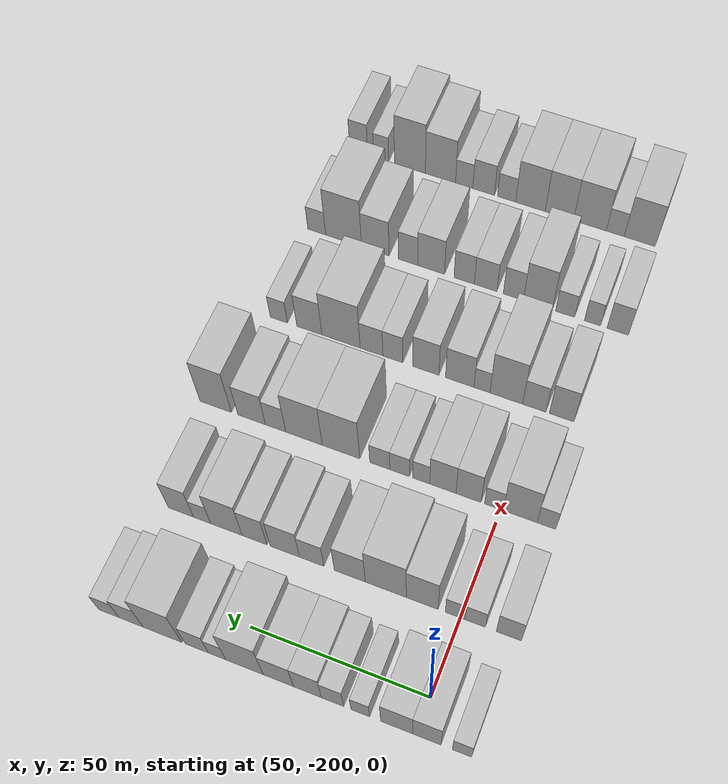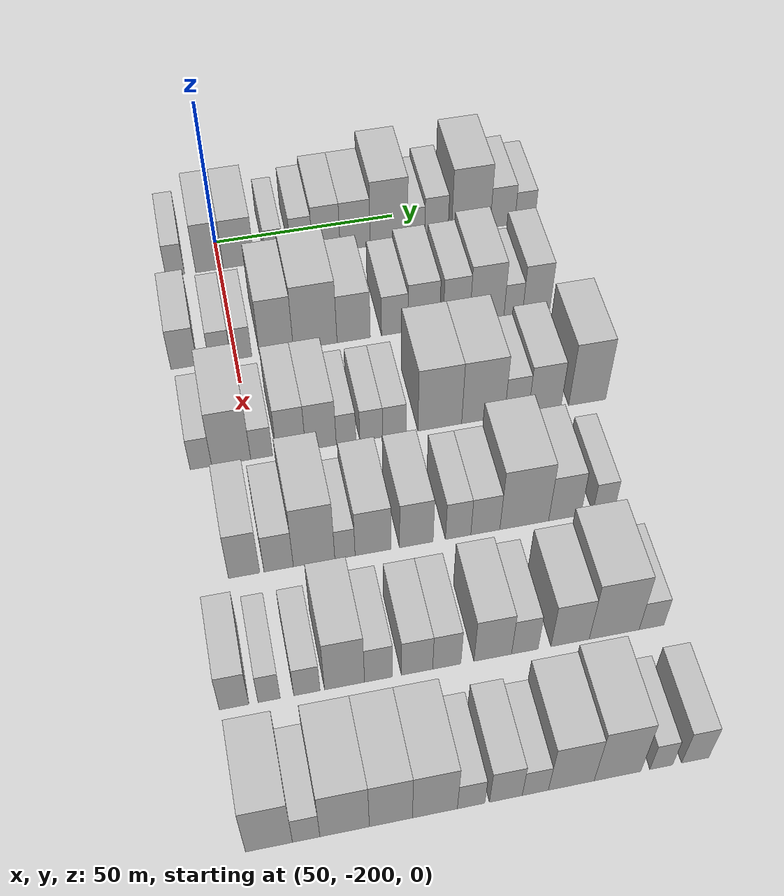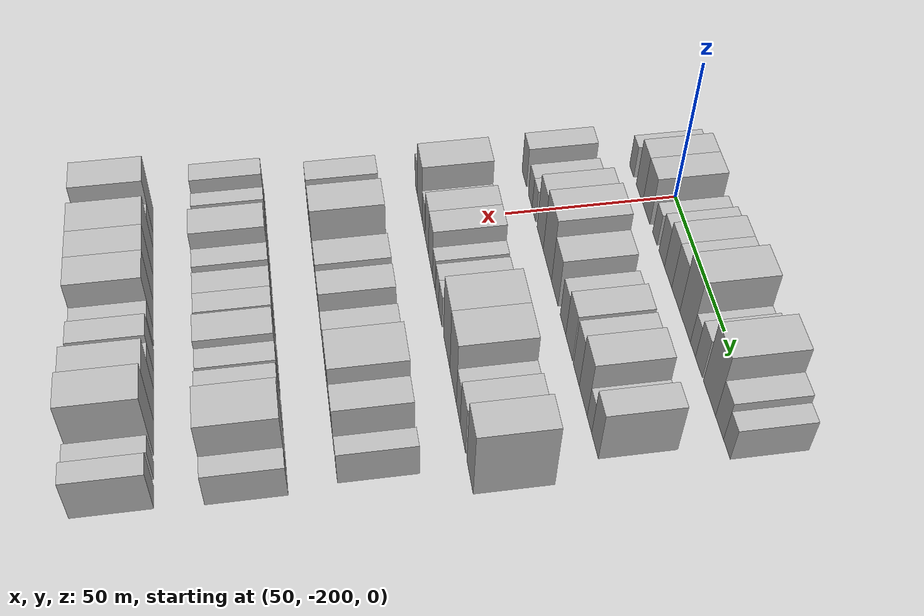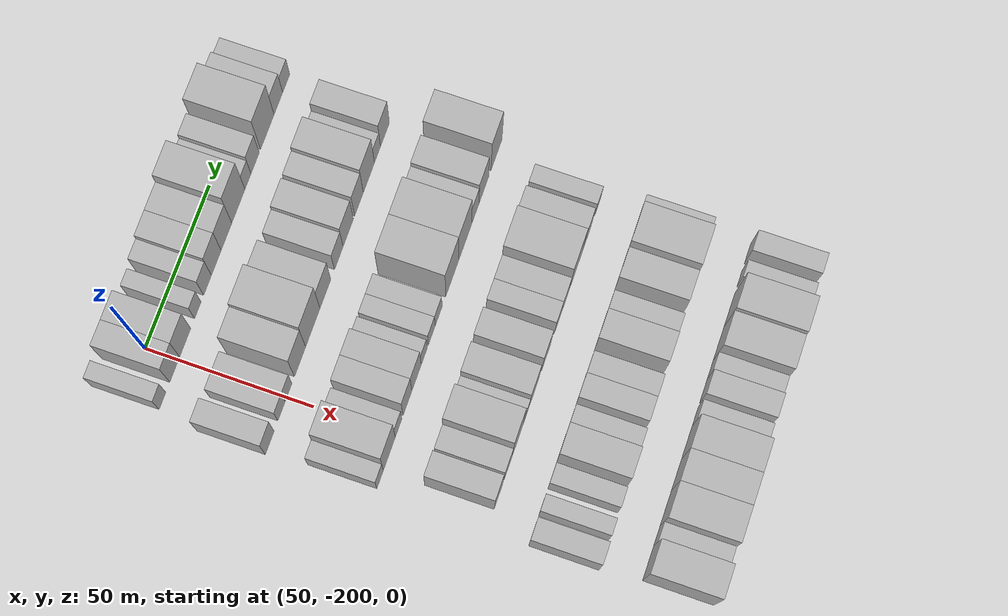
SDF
<sdf version="1.6">
 <world name="default">
  <model name="building_33">
   <static>1</static>
   <pose>50.0000 -212.1156 0 0.000000 0.000000 0.000000</pose>
   <link name="link">
    <pose>0 0 6.00 0 0 0</pose>
    <collision name="collision"><geometry><box><size>20.0000 5.0956 12.0000</size></box></geometry></collision>
    <visual name="visual">
     <cast_shadows>0</cast_shadows>
     <geometry><box><size>20.0000 5.0956 12.0000</size></box></geometry>
     <material>
      <script>
       <uri>model://HANNAS_wall/materials/scripts</uri>
       <uri>model://HANNAS_wall/materials/textures</uri>
       <name>vrc/HANNAS_wall</name>
      </script>
     </material>
    </visual>
   </link>
  </model>
  <model name="building_34">
   <static>1</static>
   <pose>50.0000 -202.7801 0 0.000000 0.000000 0.000000</pose>
   <link name="link">
    <pose>0 0 9.00 0 0 0</pose>
    <collision name="collision"><geometry><box><size>20.0000 7.5754 18.0000</size></box></geometry></collision>
    <visual name="visual">
     <cast_shadows>0</cast_shadows>
     <geometry><box><size>20.0000 7.5754 18.0000</size></box></geometry>
     <material>
      <script>
       <uri>model://HANNAS_wall/materials/scripts</uri>
       <uri>model://HANNAS_wall/materials/textures</uri>
       <name>vrc/HANNAS_wall</name>
      </script>
     </material>
    </visual>
   </link>
  </model>
  <model name="building_35">
   <static>1</static>
   <pose>50.0000 -194.7225 0 0.000000 0.000000 0.000000</pose>
   <link name="link">
    <pose>0 0 9.00 0 0 0</pose>
    <collision name="collision"><geometry><box><size>20.0000 8.5398 18.0000</size></box></geometry></collision>
    <visual name="visual">
     <cast_shadows>0</cast_shadows>
     <geometry><box><size>20.0000 8.5398 18.0000</size></box></geometry>
     <material>
      <script>
       <uri>model://HANNAS_wall/materials/scripts</uri>
       <uri>model://HANNAS_wall/materials/textures</uri>
       <name>vrc/HANNAS_wall</name>
      </script>
     </material>
    </visual>
   </link>
  </model>
  <model name="building_36">
   <static>1</static>
   <pose>50.0000 -184.9223 0 0.000000 0.000000 0.000000</pose>
   <link name="link">
    <pose>0 0 6.00 0 0 0</pose>
    <collision name="collision"><geometry><box><size>20.0000 5.0607 12.0000</size></box></geometry></collision>
    <visual name="visual">
     <cast_shadows>0</cast_shadows>
     <geometry><box><size>20.0000 5.0607 12.0000</size></box></geometry>
     <material>
      <script>
       <uri>model://HANNAS_wall/materials/scripts</uri>
       <uri>model://HANNAS_wall/materials/textures</uri>
       <name>vrc/HANNAS_wall</name>
      </script>
     </material>
    </visual>
   </link>
  </model>
  <model name="building_37">
   <static>1</static>
   <pose>50.0000 -177.3628 0 0.000000 0.000000 0.000000</pose>
   <link name="link">
    <pose>0 0 7.50 0 0 0</pose>
    <collision name="collision"><geometry><box><size>20.0000 6.0583 15.0000</size></box></geometry></collision>
    <visual name="visual">
     <cast_shadows>0</cast_shadows>
     <geometry><box><size>20.0000 6.0583 15.0000</size></box></geometry>
     <material>
      <script>
       <uri>model://HANNAS_wall/materials/scripts</uri>
       <uri>model://HANNAS_wall/materials/textures</uri>
       <name>vrc/HANNAS_wall</name>
      </script>
     </material>
    </visual>
   </link>
  </model>
  <model name="building_38">
   <static>1</static>
   <pose>50.0000 -170.4805 0 0.000000 0.000000 0.000000</pose>
   <link name="link">
    <pose>0 0 9.00 0 0 0</pose>
    <collision name="collision"><geometry><box><size>20.0000 7.7063 18.0000</size></box></geometry></collision>
    <visual name="visual">
     <cast_shadows>0</cast_shadows>
     <geometry><box><size>20.0000 7.7063 18.0000</size></box></geometry>
     <material>
      <script>
       <uri>model://HANNAS_wall/materials/scripts</uri>
       <uri>model://HANNAS_wall/materials/textures</uri>
       <name>vrc/HANNAS_wall</name>
      </script>
     </material>
    </visual>
   </link>
  </model>
  <model name="building_39">
   <static>1</static>
   <pose>50.0000 -162.4200 0 0.000000 0.000000 0.000000</pose>
   <link name="link">
    <pose>0 0 9.00 0 0 0</pose>
    <collision name="collision"><geometry><box><size>20.0000 8.4147 18.0000</size></box></geometry></collision>
    <visual name="visual">
     <cast_shadows>0</cast_shadows>
     <geometry><box><size>20.0000 8.4147 18.0000</size></box></geometry>
     <material>
      <script>
       <uri>model://HANNAS_wall/materials/scripts</uri>
       <uri>model://HANNAS_wall/materials/textures</uri>
       <name>vrc/HANNAS_wall</name>
      </script>
     </material>
    </visual>
   </link>
  </model>
  <model name="building_40">
   <static>1</static>
   <pose>50.0000 -152.9572 0 0.000000 0.000000 0.000000</pose>
   <link name="link">
    <pose>0 0 12.00 0 0 0</pose>
    <collision name="collision"><geometry><box><size>20.0000 10.5107 24.0000</size></box></geometry></collision>
    <visual name="visual">
     <cast_shadows>0</cast_shadows>
     <geometry><box><size>20.0000 10.5107 24.0000</size></box></geometry>
     <material>
      <script>
       <uri>model://HANNAS_wall/materials/scripts</uri>
       <uri>model://HANNAS_wall/materials/textures</uri>
       <name>vrc/HANNAS_wall</name>
      </script>
     </material>
    </visual>
   </link>
  </model>
  <model name="building_41">
   <static>1</static>
   <pose>50.0000 -145.2653 0 0.000000 0.000000 0.000000</pose>
   <link name="link">
    <pose>0 0 6.00 0 0 0</pose>
    <collision name="collision"><geometry><box><size>20.0000 4.8732 12.0000</size></box></geometry></collision>
    <visual name="visual">
     <cast_shadows>0</cast_shadows>
     <geometry><box><size>20.0000 4.8732 12.0000</size></box></geometry>
     <material>
      <script>
       <uri>model://HANNAS_wall/materials/scripts</uri>
       <uri>model://HANNAS_wall/materials/textures</uri>
       <name>vrc/HANNAS_wall</name>
      </script>
     </material>
    </visual>
   </link>
  </model>
  <model name="building_42">
   <static>1</static>
   <pose>50.0000 -139.5186 0 0.000000 0.000000 0.000000</pose>
   <link name="link">
    <pose>0 0 7.50 0 0 0</pose>
    <collision name="collision"><geometry><box><size>20.0000 6.6202 15.0000</size></box></geometry></collision>
    <visual name="visual">
     <cast_shadows>0</cast_shadows>
     <geometry><box><size>20.0000 6.6202 15.0000</size></box></geometry>
     <material>
      <script>
       <uri>model://HANNAS_wall/materials/scripts</uri>
       <uri>model://HANNAS_wall/materials/textures</uri>
       <name>vrc/HANNAS_wall</name>
      </script>
     </material>
    </visual>
   </link>
  </model>
  <model name="building_43">
   <static>1</static>
   <pose>50.0000 -129.6769 0 0.000000 0.000000 0.000000</pose>
   <link name="link">
    <pose>0 0 12.00 0 0 0</pose>
    <collision name="collision"><geometry><box><size>20.0000 11.0632 24.0000</size></box></geometry></collision>
    <visual name="visual">
     <cast_shadows>0</cast_shadows>
     <geometry><box><size>20.0000 11.0632 24.0000</size></box></geometry>
     <material>
      <script>
       <uri>model://HANNAS_wall/materials/scripts</uri>
       <uri>model://HANNAS_wall/materials/textures</uri>
       <name>vrc/HANNAS_wall</name>
      </script>
     </material>
    </visual>
   </link>
  </model>
  <model name="building_44">
   <static>1</static>
   <pose>50.0000 -120.6109 0 0.000000 0.000000 0.000000</pose>
   <link name="link">
    <pose>0 0 7.50 0 0 0</pose>
    <collision name="collision"><geometry><box><size>20.0000 7.0687 15.0000</size></box></geometry></collision>
    <visual name="visual">
     <cast_shadows>0</cast_shadows>
     <geometry><box><size>20.0000 7.0687 15.0000</size></box></geometry>
     <material>
      <script>
       <uri>model://HANNAS_wall/materials/scripts</uri>
       <uri>model://HANNAS_wall/materials/textures</uri>
       <name>vrc/HANNAS_wall</name>
      </script>
     </material>
    </visual>
   </link>
  </model>
  <model name="building_45">
   <static>1</static>
   <pose>50.0000 -114.1726 0 0.000000 0.000000 0.000000</pose>
   <link name="link">
    <pose>0 0 6.00 0 0 0</pose>
    <collision name="collision"><geometry><box><size>20.0000 5.8080 12.0000</size></box></geometry></collision>
    <visual name="visual">
     <cast_shadows>0</cast_shadows>
     <geometry><box><size>20.0000 5.8080 12.0000</size></box></geometry>
     <material>
      <script>
       <uri>model://HANNAS_wall/materials/scripts</uri>
       <uri>model://HANNAS_wall/materials/textures</uri>
       <name>vrc/HANNAS_wall</name>
      </script>
     </material>
    </visual>
   </link>
  </model>
  <model name="building_159">
   <static>1</static>
   <pose>82.0000 -213.3561 0 0.000000 0.000000 0.000000</pose>
   <link name="link">
    <pose>0 0 7.50 0 0 0</pose>
    <collision name="collision"><geometry><box><size>20.0000 6.8911 15.0000</size></box></geometry></collision>
    <visual name="visual">
     <cast_shadows>0</cast_shadows>
     <geometry><box><size>20.0000 6.8911 15.0000</size></box></geometry>
     <material>
      <script>
       <uri>model://HANNAS_wall/materials/scripts</uri>
       <uri>model://HANNAS_wall/materials/textures</uri>
       <name>vrc/HANNAS_wall</name>
      </script>
     </material>
    </visual>
   </link>
  </model>
  <model name="building_160">
   <static>1</static>
   <pose>82.0000 -204.0961 0 0.000000 0.000000 0.000000</pose>
   <link name="link">
    <pose>0 0 6.00 0 0 0</pose>
    <collision name="collision"><geometry><box><size>20.0000 5.6289 12.0000</size></box></geometry></collision>
    <visual name="visual">
     <cast_shadows>0</cast_shadows>
     <geometry><box><size>20.0000 5.6289 12.0000</size></box></geometry>
     <material>
      <script>
       <uri>model://HANNAS_wall/materials/scripts</uri>
       <uri>model://HANNAS_wall/materials/textures</uri>
       <name>vrc/HANNAS_wall</name>
      </script>
     </material>
    </visual>
   </link>
  </model>
  <model name="building_161">
   <static>1</static>
   <pose>82.0000 -198.5373 0 0.000000 0.000000 0.000000</pose>
   <link name="link">
    <pose>0 0 6.00 0 0 0</pose>
    <collision name="collision"><geometry><box><size>20.0000 5.4887 12.0000</size></box></geometry></collision>
    <visual name="visual">
     <cast_shadows>0</cast_shadows>
     <geometry><box><size>20.0000 5.4887 12.0000</size></box></geometry>
     <material>
      <script>
       <uri>model://HANNAS_wall/materials/scripts</uri>
       <uri>model://HANNAS_wall/materials/textures</uri>
       <name>vrc/HANNAS_wall</name>
      </script>
     </material>
    </visual>
   </link>
  </model>
  <model name="building_162">
   <static>1</static>
   <pose>82.0000 -189.3347 0 0.000000 0.000000 0.000000</pose>
   <link name="link">
    <pose>0 0 10.50 0 0 0</pose>
    <collision name="collision"><geometry><box><size>20.0000 8.9163 21.0000</size></box></geometry></collision>
    <visual name="visual">
     <cast_shadows>0</cast_shadows>
     <geometry><box><size>20.0000 8.9163 21.0000</size></box></geometry>
     <material>
      <script>
       <uri>model://HANNAS_wall/materials/scripts</uri>
       <uri>model://HANNAS_wall/materials/textures</uri>
       <name>vrc/HANNAS_wall</name>
      </script>
     </material>
    </visual>
   </link>
  </model>
  <model name="building_163">
   <static>1</static>
   <pose>82.0000 -179.0976 0 0.000000 0.000000 0.000000</pose>
   <link name="link">
    <pose>0 0 12.00 0 0 0</pose>
    <collision name="collision"><geometry><box><size>20.0000 11.5581 24.0000</size></box></geometry></collision>
    <visual name="visual">
     <cast_shadows>0</cast_shadows>
     <geometry><box><size>20.0000 11.5581 24.0000</size></box></geometry>
     <material>
      <script>
       <uri>model://HANNAS_wall/materials/scripts</uri>
       <uri>model://HANNAS_wall/materials/textures</uri>
       <name>vrc/HANNAS_wall</name>
      </script>
     </material>
    </visual>
   </link>
  </model>
  <model name="building_164">
   <static>1</static>
   <pose>82.0000 -168.8979 0 0.000000 0.000000 0.000000</pose>
   <link name="link">
    <pose>0 0 9.00 0 0 0</pose>
    <collision name="collision"><geometry><box><size>20.0000 8.8413 18.0000</size></box></geometry></collision>
    <visual name="visual">
     <cast_shadows>0</cast_shadows>
     <geometry><box><size>20.0000 8.8413 18.0000</size></box></geometry>
     <material>
      <script>
       <uri>model://HANNAS_wall/materials/scripts</uri>
       <uri>model://HANNAS_wall/materials/textures</uri>
       <name>vrc/HANNAS_wall</name>
      </script>
     </material>
    </visual>
   </link>
  </model>
  <model name="building_165">
   <static>1</static>
   <pose>82.0000 -157.9597 0 0.000000 0.000000 0.000000</pose>
   <link name="link">
    <pose>0 0 7.50 0 0 0</pose>
    <collision name="collision"><geometry><box><size>20.0000 7.0351 15.0000</size></box></geometry></collision>
    <visual name="visual">
     <cast_shadows>0</cast_shadows>
     <geometry><box><size>20.0000 7.0351 15.0000</size></box></geometry>
     <material>
      <script>
       <uri>model://HANNAS_wall/materials/scripts</uri>
       <uri>model://HANNAS_wall/materials/textures</uri>
       <name>vrc/HANNAS_wall</name>
      </script>
     </material>
    </visual>
   </link>
  </model>
  <model name="building_166">
   <static>1</static>
   <pose>82.0000 -150.1889 0 0.000000 0.000000 0.000000</pose>
   <link name="link">
    <pose>0 0 9.00 0 0 0</pose>
    <collision name="collision"><geometry><box><size>20.0000 8.5064 18.0000</size></box></geometry></collision>
    <visual name="visual">
     <cast_shadows>0</cast_shadows>
     <geometry><box><size>20.0000 8.5064 18.0000</size></box></geometry>
     <material>
      <script>
       <uri>model://HANNAS_wall/materials/scripts</uri>
       <uri>model://HANNAS_wall/materials/textures</uri>
       <name>vrc/HANNAS_wall</name>
      </script>
     </material>
    </visual>
   </link>
  </model>
  <model name="building_167">
   <static>1</static>
   <pose>82.0000 -141.3164 0 0.000000 0.000000 0.000000</pose>
   <link name="link">
    <pose>0 0 9.00 0 0 0</pose>
    <collision name="collision"><geometry><box><size>20.0000 7.2386 18.0000</size></box></geometry></collision>
    <visual name="visual">
     <cast_shadows>0</cast_shadows>
     <geometry><box><size>20.0000 7.2386 18.0000</size></box></geometry>
     <material>
      <script>
       <uri>model://HANNAS_wall/materials/scripts</uri>
       <uri>model://HANNAS_wall/materials/textures</uri>
       <name>vrc/HANNAS_wall</name>
      </script>
     </material>
    </visual>
   </link>
  </model>
  <model name="building_168">
   <static>1</static>
   <pose>82.0000 -133.0347 0 0.000000 0.000000 0.000000</pose>
   <link name="link">
    <pose>0 0 10.50 0 0 0</pose>
    <collision name="collision"><geometry><box><size>20.0000 9.3247 21.0000</size></box></geometry></collision>
    <visual name="visual">
     <cast_shadows>0</cast_shadows>
     <geometry><box><size>20.0000 9.3247 21.0000</size></box></geometry>
     <material>
      <script>
       <uri>model://HANNAS_wall/materials/scripts</uri>
       <uri>model://HANNAS_wall/materials/textures</uri>
       <name>vrc/HANNAS_wall</name>
      </script>
     </material>
    </visual>
   </link>
  </model>
  <model name="building_169">
   <static>1</static>
   <pose>82.0000 -125.8127 0 0.000000 0.000000 0.000000</pose>
   <link name="link">
    <pose>0 0 6.00 0 0 0</pose>
    <collision name="collision"><geometry><box><size>20.0000 5.1193 12.0000</size></box></geometry></collision>
    <visual name="visual">
     <cast_shadows>0</cast_shadows>
     <geometry><box><size>20.0000 5.1193 12.0000</size></box></geometry>
     <material>
      <script>
       <uri>model://HANNAS_wall/materials/scripts</uri>
       <uri>model://HANNAS_wall/materials/textures</uri>
       <name>vrc/HANNAS_wall</name>
      </script>
     </material>
    </visual>
   </link>
  </model>
  <model name="building_170">
   <static>1</static>
   <pose>82.0000 -119.4903 0 0.000000 0.000000 0.000000</pose>
   <link name="link">
    <pose>0 0 9.00 0 0 0</pose>
    <collision name="collision"><geometry><box><size>20.0000 7.5255 18.0000</size></box></geometry></collision>
    <visual name="visual">
     <cast_shadows>0</cast_shadows>
     <geometry><box><size>20.0000 7.5255 18.0000</size></box></geometry>
     <material>
      <script>
       <uri>model://HANNAS_wall/materials/scripts</uri>
       <uri>model://HANNAS_wall/materials/textures</uri>
       <name>vrc/HANNAS_wall</name>
      </script>
     </material>
    </visual>
   </link>
  </model>
  <model name="building_284">
   <static>1</static>
   <pose>114.0000 -212.9669 0 0.000000 0.000000 0.000000</pose>
   <link name="link">
    <pose>0 0 6.00 0 0 0</pose>
    <collision name="collision"><geometry><box><size>20.0000 5.2840 12.0000</size></box></geometry></collision>
    <visual name="visual">
     <cast_shadows>0</cast_shadows>
     <geometry><box><size>20.0000 5.2840 12.0000</size></box></geometry>
     <material>
      <script>
       <uri>model://HANNAS_wall/materials/scripts</uri>
       <uri>model://HANNAS_wall/materials/textures</uri>
       <name>vrc/HANNAS_wall</name>
      </script>
     </material>
    </visual>
   </link>
  </model>
  <model name="building_285">
   <static>1</static>
   <pose>114.0000 -205.5097 0 0.000000 0.000000 0.000000</pose>
   <link name="link">
    <pose>0 0 10.50 0 0 0</pose>
    <collision name="collision"><geometry><box><size>20.0000 9.6304 21.0000</size></box></geometry></collision>
    <visual name="visual">
     <cast_shadows>0</cast_shadows>
     <geometry><box><size>20.0000 9.6304 21.0000</size></box></geometry>
     <material>
      <script>
       <uri>model://HANNAS_wall/materials/scripts</uri>
       <uri>model://HANNAS_wall/materials/textures</uri>
       <name>vrc/HANNAS_wall</name>
      </script>
     </material>
    </visual>
   </link>
  </model>
  <model name="building_286">
   <static>1</static>
   <pose>114.0000 -197.9798 0 0.000000 0.000000 0.000000</pose>
   <link name="link">
    <pose>0 0 6.00 0 0 0</pose>
    <collision name="collision"><geometry><box><size>20.0000 5.4293 12.0000</size></box></geometry></collision>
    <visual name="visual">
     <cast_shadows>0</cast_shadows>
     <geometry><box><size>20.0000 5.4293 12.0000</size></box></geometry>
     <material>
      <script>
       <uri>model://HANNAS_wall/materials/scripts</uri>
       <uri>model://HANNAS_wall/materials/textures</uri>
       <name>vrc/HANNAS_wall</name>
      </script>
     </material>
    </visual>
   </link>
  </model>
  <model name="building_287">
   <static>1</static>
   <pose>114.0000 -190.6415 0 0.000000 0.000000 0.000000</pose>
   <link name="link">
    <pose>0 0 9.00 0 0 0</pose>
    <collision name="collision"><geometry><box><size>20.0000 7.2474 18.0000</size></box></geometry></collision>
    <visual name="visual">
     <cast_shadows>0</cast_shadows>
     <geometry><box><size>20.0000 7.2474 18.0000</size></box></geometry>
     <material>
      <script>
       <uri>model://HANNAS_wall/materials/scripts</uri>
       <uri>model://HANNAS_wall/materials/textures</uri>
       <name>vrc/HANNAS_wall</name>
      </script>
     </material>
    </visual>
   </link>
  </model>
  <model name="building_288">
   <static>1</static>
   <pose>114.0000 -183.1752 0 0.000000 0.000000 0.000000</pose>
   <link name="link">
    <pose>0 0 9.00 0 0 0</pose>
    <collision name="collision"><geometry><box><size>20.0000 7.6853 18.0000</size></box></geometry></collision>
    <visual name="visual">
     <cast_shadows>0</cast_shadows>
     <geometry><box><size>20.0000 7.6853 18.0000</size></box></geometry>
     <material>
      <script>
       <uri>model://HANNAS_wall/materials/scripts</uri>
       <uri>model://HANNAS_wall/materials/textures</uri>
       <name>vrc/HANNAS_wall</name>
      </script>
     </material>
    </visual>
   </link>
  </model>
  <model name="building_289">
   <static>1</static>
   <pose>114.0000 -176.8612 0 0.000000 0.000000 0.000000</pose>
   <link name="link">
    <pose>0 0 6.00 0 0 0</pose>
    <collision name="collision"><geometry><box><size>20.0000 4.9427 12.0000</size></box></geometry></collision>
    <visual name="visual">
     <cast_shadows>0</cast_shadows>
     <geometry><box><size>20.0000 4.9427 12.0000</size></box></geometry>
     <material>
      <script>
       <uri>model://HANNAS_wall/materials/scripts</uri>
       <uri>model://HANNAS_wall/materials/textures</uri>
       <name>vrc/HANNAS_wall</name>
      </script>
     </material>
    </visual>
   </link>
  </model>
  <model name="building_290">
   <static>1</static>
   <pose>114.0000 -170.5209 0 0.000000 0.000000 0.000000</pose>
   <link name="link">
    <pose>0 0 6.00 0 0 0</pose>
    <collision name="collision"><geometry><box><size>20.0000 5.7380 12.0000</size></box></geometry></collision>
    <visual name="visual">
     <cast_shadows>0</cast_shadows>
     <geometry><box><size>20.0000 5.7380 12.0000</size></box></geometry>
     <material>
      <script>
       <uri>model://HANNAS_wall/materials/scripts</uri>
       <uri>model://HANNAS_wall/materials/textures</uri>
       <name>vrc/HANNAS_wall</name>
      </script>
     </material>
    </visual>
   </link>
  </model>
  <model name="building_291">
   <static>1</static>
   <pose>114.0000 -164.6711 0 0.000000 0.000000 0.000000</pose>
   <link name="link">
    <pose>0 0 6.00 0 0 0</pose>
    <collision name="collision"><geometry><box><size>20.0000 5.9616 12.0000</size></box></geometry></collision>
    <visual name="visual">
     <cast_shadows>0</cast_shadows>
     <geometry><box><size>20.0000 5.9616 12.0000</size></box></geometry>
     <material>
      <script>
       <uri>model://HANNAS_wall/materials/scripts</uri>
       <uri>model://HANNAS_wall/materials/textures</uri>
       <name>vrc/HANNAS_wall</name>
      </script>
     </material>
    </visual>
   </link>
  </model>
  <model name="building_292">
   <static>1</static>
   <pose>114.0000 -153.0856 0 0.000000 0.000000 0.000000</pose>
   <link name="link">
    <pose>0 0 12.00 0 0 0</pose>
    <collision name="collision"><geometry><box><size>20.0000 11.2094 24.0000</size></box></geometry></collision>
    <visual name="visual">
     <cast_shadows>0</cast_shadows>
     <geometry><box><size>20.0000 11.2094 24.0000</size></box></geometry>
     <material>
      <script>
       <uri>model://HANNAS_wall/materials/scripts</uri>
       <uri>model://HANNAS_wall/materials/textures</uri>
       <name>vrc/HANNAS_wall</name>
      </script>
     </material>
    </visual>
   </link>
  </model>
  <model name="building_293">
   <static>1</static>
   <pose>114.0000 -141.9498 0 0.000000 0.000000 0.000000</pose>
   <link name="link">
    <pose>0 0 12.00 0 0 0</pose>
    <collision name="collision"><geometry><box><size>20.0000 11.0622 24.0000</size></box></geometry></collision>
    <visual name="visual">
     <cast_shadows>0</cast_shadows>
     <geometry><box><size>20.0000 11.0622 24.0000</size></box></geometry>
     <material>
      <script>
       <uri>model://HANNAS_wall/materials/scripts</uri>
       <uri>model://HANNAS_wall/materials/textures</uri>
       <name>vrc/HANNAS_wall</name>
      </script>
     </material>
    </visual>
   </link>
  </model>
  <model name="building_294">
   <static>1</static>
   <pose>114.0000 -133.3117 0 0.000000 0.000000 0.000000</pose>
   <link name="link">
    <pose>0 0 7.50 0 0 0</pose>
    <collision name="collision"><geometry><box><size>20.0000 6.2142 15.0000</size></box></geometry></collision>
    <visual name="visual">
     <cast_shadows>0</cast_shadows>
     <geometry><box><size>20.0000 6.2142 15.0000</size></box></geometry>
     <material>
      <script>
       <uri>model://HANNAS_wall/materials/scripts</uri>
       <uri>model://HANNAS_wall/materials/textures</uri>
       <name>vrc/HANNAS_wall</name>
      </script>
     </material>
    </visual>
   </link>
  </model>
  <model name="building_295">
   <static>1</static>
   <pose>114.0000 -125.9584 0 0.000000 0.000000 0.000000</pose>
   <link name="link">
    <pose>0 0 9.00 0 0 0</pose>
    <collision name="collision"><geometry><box><size>20.0000 8.4923 18.0000</size></box></geometry></collision>
    <visual name="visual">
     <cast_shadows>0</cast_shadows>
     <geometry><box><size>20.0000 8.4923 18.0000</size></box></geometry>
     <material>
      <script>
       <uri>model://HANNAS_wall/materials/scripts</uri>
       <uri>model://HANNAS_wall/materials/textures</uri>
       <name>vrc/HANNAS_wall</name>
      </script>
     </material>
    </visual>
   </link>
  </model>
  <model name="building_296">
   <static>1</static>
   <pose>114.0000 -114.8510 0 0.000000 0.000000 0.000000</pose>
   <link name="link">
    <pose>0 0 12.00 0 0 0</pose>
    <collision name="collision"><geometry><box><size>20.0000 9.7226 24.0000</size></box></geometry></collision>
    <visual name="visual">
     <cast_shadows>0</cast_shadows>
     <geometry><box><size>20.0000 9.7226 24.0000</size></box></geometry>
     <material>
      <script>
       <uri>model://HANNAS_wall/materials/scripts</uri>
       <uri>model://HANNAS_wall/materials/textures</uri>
       <name>vrc/HANNAS_wall</name>
      </script>
     </material>
    </visual>
   </link>
  </model>
  <model name="building_405">
   <static>1</static>
   <pose>146.0000 -206.8245 0 0.000000 0.000000 0.000000</pose>
   <link name="link">
    <pose>0 0 9.00 0 0 0</pose>
    <collision name="collision"><geometry><box><size>20.0000 7.2828 18.0000</size></box></geometry></collision>
    <visual name="visual">
     <cast_shadows>0</cast_shadows>
     <geometry><box><size>20.0000 7.2828 18.0000</size></box></geometry>
     <material>
      <script>
       <uri>model://HANNAS_wall/materials/scripts</uri>
       <uri>model://HANNAS_wall/materials/textures</uri>
       <name>vrc/HANNAS_wall</name>
      </script>
     </material>
    </visual>
   </link>
  </model>
  <model name="building_406">
   <static>1</static>
   <pose>146.0000 -198.7376 0 0.000000 0.000000 0.000000</pose>
   <link name="link">
    <pose>0 0 7.50 0 0 0</pose>
    <collision name="collision"><geometry><box><size>20.0000 6.8911 15.0000</size></box></geometry></collision>
    <visual name="visual">
     <cast_shadows>0</cast_shadows>
     <geometry><box><size>20.0000 6.8911 15.0000</size></box></geometry>
     <material>
      <script>
       <uri>model://HANNAS_wall/materials/scripts</uri>
       <uri>model://HANNAS_wall/materials/textures</uri>
       <name>vrc/HANNAS_wall</name>
      </script>
     </material>
    </visual>
   </link>
  </model>
  <model name="building_407">
   <static>1</static>
   <pose>146.0000 -190.3859 0 0.000000 0.000000 0.000000</pose>
   <link name="link">
    <pose>0 0 12.00 0 0 0</pose>
    <collision name="collision"><geometry><box><size>20.0000 9.8123 24.0000</size></box></geometry></collision>
    <visual name="visual">
     <cast_shadows>0</cast_shadows>
     <geometry><box><size>20.0000 9.8123 24.0000</size></box></geometry>
     <material>
      <script>
       <uri>model://HANNAS_wall/materials/scripts</uri>
       <uri>model://HANNAS_wall/materials/textures</uri>
       <name>vrc/HANNAS_wall</name>
      </script>
     </material>
    </visual>
   </link>
  </model>
  <model name="building_408">
   <static>1</static>
   <pose>146.0000 -183.0738 0 0.000000 0.000000 0.000000</pose>
   <link name="link">
    <pose>0 0 6.00 0 0 0</pose>
    <collision name="collision"><geometry><box><size>20.0000 4.8118 12.0000</size></box></geometry></collision>
    <visual name="visual">
     <cast_shadows>0</cast_shadows>
     <geometry><box><size>20.0000 4.8118 12.0000</size></box></geometry>
     <material>
      <script>
       <uri>model://HANNAS_wall/materials/scripts</uri>
       <uri>model://HANNAS_wall/materials/textures</uri>
       <name>vrc/HANNAS_wall</name>
      </script>
     </material>
    </visual>
   </link>
  </model>
  <model name="building_409">
   <static>1</static>
   <pose>146.0000 -176.3588 0 0.000000 0.000000 0.000000</pose>
   <link name="link">
    <pose>0 0 9.00 0 0 0</pose>
    <collision name="collision"><geometry><box><size>20.0000 8.6183 18.0000</size></box></geometry></collision>
    <visual name="visual">
     <cast_shadows>0</cast_shadows>
     <geometry><box><size>20.0000 8.6183 18.0000</size></box></geometry>
     <material>
      <script>
       <uri>model://HANNAS_wall/materials/scripts</uri>
       <uri>model://HANNAS_wall/materials/textures</uri>
       <name>vrc/HANNAS_wall</name>
      </script>
     </material>
    </visual>
   </link>
  </model>
  <model name="building_410">
   <static>1</static>
   <pose>146.0000 -166.0205 0 0.000000 0.000000 0.000000</pose>
   <link name="link">
    <pose>0 0 9.00 0 0 0</pose>
    <collision name="collision"><geometry><box><size>20.0000 8.0582 18.0000</size></box></geometry></collision>
    <visual name="visual">
     <cast_shadows>0</cast_shadows>
     <geometry><box><size>20.0000 8.0582 18.0000</size></box></geometry>
     <material>
      <script>
       <uri>model://HANNAS_wall/materials/scripts</uri>
       <uri>model://HANNAS_wall/materials/textures</uri>
       <name>vrc/HANNAS_wall</name>
      </script>
     </material>
    </visual>
   </link>
  </model>
  <model name="building_411">
   <static>1</static>
   <pose>146.0000 -155.9151 0 0.000000 0.000000 0.000000</pose>
   <link name="link">
    <pose>0 0 7.50 0 0 0</pose>
    <collision name="collision"><geometry><box><size>20.0000 6.1526 15.0000</size></box></geometry></collision>
    <visual name="visual">
     <cast_shadows>0</cast_shadows>
     <geometry><box><size>20.0000 6.1526 15.0000</size></box></geometry>
     <material>
      <script>
       <uri>model://HANNAS_wall/materials/scripts</uri>
       <uri>model://HANNAS_wall/materials/textures</uri>
       <name>vrc/HANNAS_wall</name>
      </script>
     </material>
    </visual>
   </link>
  </model>
  <model name="building_412">
   <static>1</static>
   <pose>146.0000 -149.3066 0 0.000000 0.000000 0.000000</pose>
   <link name="link">
    <pose>0 0 7.50 0 0 0</pose>
    <collision name="collision"><geometry><box><size>20.0000 7.0646 15.0000</size></box></geometry></collision>
    <visual name="visual">
     <cast_shadows>0</cast_shadows>
     <geometry><box><size>20.0000 7.0646 15.0000</size></box></geometry>
     <material>
      <script>
       <uri>model://HANNAS_wall/materials/scripts</uri>
       <uri>model://HANNAS_wall/materials/textures</uri>
       <name>vrc/HANNAS_wall</name>
      </script>
     </material>
    </visual>
   </link>
  </model>
  <model name="building_413">
   <static>1</static>
   <pose>146.0000 -139.7869 0 0.000000 0.000000 0.000000</pose>
   <link name="link">
    <pose>0 0 12.00 0 0 0</pose>
    <collision name="collision"><geometry><box><size>20.0000 11.9749 24.0000</size></box></geometry></collision>
    <visual name="visual">
     <cast_shadows>0</cast_shadows>
     <geometry><box><size>20.0000 11.9749 24.0000</size></box></geometry>
     <material>
      <script>
       <uri>model://HANNAS_wall/materials/scripts</uri>
       <uri>model://HANNAS_wall/materials/textures</uri>
       <name>vrc/HANNAS_wall</name>
      </script>
     </material>
    </visual>
   </link>
  </model>
  <model name="building_414">
   <static>1</static>
   <pose>146.0000 -129.8368 0 0.000000 0.000000 0.000000</pose>
   <link name="link">
    <pose>0 0 9.00 0 0 0</pose>
    <collision name="collision"><geometry><box><size>20.0000 7.9253 18.0000</size></box></geometry></collision>
    <visual name="visual">
     <cast_shadows>0</cast_shadows>
     <geometry><box><size>20.0000 7.9253 18.0000</size></box></geometry>
     <material>
      <script>
       <uri>model://HANNAS_wall/materials/scripts</uri>
       <uri>model://HANNAS_wall/materials/textures</uri>
       <name>vrc/HANNAS_wall</name>
      </script>
     </material>
    </visual>
   </link>
  </model>
  <model name="building_415">
   <static>1</static>
   <pose>146.0000 -120.1510 0 0.000000 0.000000 0.000000</pose>
   <link name="link">
    <pose>0 0 6.00 0 0 0</pose>
    <collision name="collision"><geometry><box><size>20.0000 5.4462 12.0000</size></box></geometry></collision>
    <visual name="visual">
     <cast_shadows>0</cast_shadows>
     <geometry><box><size>20.0000 5.4462 12.0000</size></box></geometry>
     <material>
      <script>
       <uri>model://HANNAS_wall/materials/scripts</uri>
       <uri>model://HANNAS_wall/materials/textures</uri>
       <name>vrc/HANNAS_wall</name>
      </script>
     </material>
    </visual>
   </link>
  </model>
  <model name="building_525">
   <static>1</static>
   <pose>178.0000 -213.5410 0 0.000000 0.000000 0.000000</pose>
   <link name="link">
    <pose>0 0 7.50 0 0 0</pose>
    <collision name="collision"><geometry><box><size>20.0000 6.4878 15.0000</size></box></geometry></collision>
    <visual name="visual">
     <cast_shadows>0</cast_shadows>
     <geometry><box><size>20.0000 6.4878 15.0000</size></box></geometry>
     <material>
      <script>
       <uri>model://HANNAS_wall/materials/scripts</uri>
       <uri>model://HANNAS_wall/materials/textures</uri>
       <name>vrc/HANNAS_wall</name>
      </script>
     </material>
    </visual>
   </link>
  </model>
  <model name="building_526">
   <static>1</static>
   <pose>178.0000 -205.8468 0 0.000000 0.000000 0.000000</pose>
   <link name="link">
    <pose>0 0 6.00 0 0 0</pose>
    <collision name="collision"><geometry><box><size>20.0000 4.9005 12.0000</size></box></geometry></collision>
    <visual name="visual">
     <cast_shadows>0</cast_shadows>
     <geometry><box><size>20.0000 4.9005 12.0000</size></box></geometry>
     <material>
      <script>
       <uri>model://HANNAS_wall/materials/scripts</uri>
       <uri>model://HANNAS_wall/materials/textures</uri>
       <name>vrc/HANNAS_wall</name>
      </script>
     </material>
    </visual>
   </link>
  </model>
  <model name="building_527">
   <static>1</static>
   <pose>178.0000 -197.4768 0 0.000000 0.000000 0.000000</pose>
   <link name="link">
    <pose>0 0 6.00 0 0 0</pose>
    <collision name="collision"><geometry><box><size>20.0000 5.8397 12.0000</size></box></geometry></collision>
    <visual name="visual">
     <cast_shadows>0</cast_shadows>
     <geometry><box><size>20.0000 5.8397 12.0000</size></box></geometry>
     <material>
      <script>
       <uri>model://HANNAS_wall/materials/scripts</uri>
       <uri>model://HANNAS_wall/materials/textures</uri>
       <name>vrc/HANNAS_wall</name>
      </script>
     </material>
    </visual>
   </link>
  </model>
  <model name="building_528">
   <static>1</static>
   <pose>178.0000 -189.0836 0 0.000000 0.000000 0.000000</pose>
   <link name="link">
    <pose>0 0 10.50 0 0 0</pose>
    <collision name="collision"><geometry><box><size>20.0000 8.9466 21.0000</size></box></geometry></collision>
    <visual name="visual">
     <cast_shadows>0</cast_shadows>
     <geometry><box><size>20.0000 8.9466 21.0000</size></box></geometry>
     <material>
      <script>
       <uri>model://HANNAS_wall/materials/scripts</uri>
       <uri>model://HANNAS_wall/materials/textures</uri>
       <name>vrc/HANNAS_wall</name>
      </script>
     </material>
    </visual>
   </link>
  </model>
  <model name="building_529">
   <static>1</static>
   <pose>178.0000 -181.4706 0 0.000000 0.000000 0.000000</pose>
   <link name="link">
    <pose>0 0 7.50 0 0 0</pose>
    <collision name="collision"><geometry><box><size>20.0000 6.2794 15.0000</size></box></geometry></collision>
    <visual name="visual">
     <cast_shadows>0</cast_shadows>
     <geometry><box><size>20.0000 6.2794 15.0000</size></box></geometry>
     <material>
      <script>
       <uri>model://HANNAS_wall/materials/scripts</uri>
       <uri>model://HANNAS_wall/materials/textures</uri>
       <name>vrc/HANNAS_wall</name>
      </script>
     </material>
    </visual>
   </link>
  </model>
  <model name="building_530">
   <static>1</static>
   <pose>178.0000 -172.7949 0 0.000000 0.000000 0.000000</pose>
   <link name="link">
    <pose>0 0 7.50 0 0 0</pose>
    <collision name="collision"><geometry><box><size>20.0000 7.0720 15.0000</size></box></geometry></collision>
    <visual name="visual">
     <cast_shadows>0</cast_shadows>
     <geometry><box><size>20.0000 7.0720 15.0000</size></box></geometry>
     <material>
      <script>
       <uri>model://HANNAS_wall/materials/scripts</uri>
       <uri>model://HANNAS_wall/materials/textures</uri>
       <name>vrc/HANNAS_wall</name>
      </script>
     </material>
    </visual>
   </link>
  </model>
  <model name="building_531">
   <static>1</static>
   <pose>178.0000 -166.0530 0 0.000000 0.000000 0.000000</pose>
   <link name="link">
    <pose>0 0 7.50 0 0 0</pose>
    <collision name="collision"><geometry><box><size>20.0000 6.4118 15.0000</size></box></geometry></collision>
    <visual name="visual">
     <cast_shadows>0</cast_shadows>
     <geometry><box><size>20.0000 6.4118 15.0000</size></box></geometry>
     <material>
      <script>
       <uri>model://HANNAS_wall/materials/scripts</uri>
       <uri>model://HANNAS_wall/materials/textures</uri>
       <name>vrc/HANNAS_wall</name>
      </script>
     </material>
    </visual>
   </link>
  </model>
  <model name="building_532">
   <static>1</static>
   <pose>178.0000 -155.5350 0 0.000000 0.000000 0.000000</pose>
   <link name="link">
    <pose>0 0 9.00 0 0 0</pose>
    <collision name="collision"><geometry><box><size>20.0000 8.6242 18.0000</size></box></geometry></collision>
    <visual name="visual">
     <cast_shadows>0</cast_shadows>
     <geometry><box><size>20.0000 8.6242 18.0000</size></box></geometry>
     <material>
      <script>
       <uri>model://HANNAS_wall/materials/scripts</uri>
       <uri>model://HANNAS_wall/materials/textures</uri>
       <name>vrc/HANNAS_wall</name>
      </script>
     </material>
    </visual>
   </link>
  </model>
  <model name="building_533">
   <static>1</static>
   <pose>178.0000 -148.1656 0 0.000000 0.000000 0.000000</pose>
   <link name="link">
    <pose>0 0 7.50 0 0 0</pose>
    <collision name="collision"><geometry><box><size>20.0000 6.1145 15.0000</size></box></geometry></collision>
    <visual name="visual">
     <cast_shadows>0</cast_shadows>
     <geometry><box><size>20.0000 6.1145 15.0000</size></box></geometry>
     <material>
      <script>
       <uri>model://HANNAS_wall/materials/scripts</uri>
       <uri>model://HANNAS_wall/materials/textures</uri>
       <name>vrc/HANNAS_wall</name>
      </script>
     </material>
    </visual>
   </link>
  </model>
  <model name="building_534">
   <static>1</static>
   <pose>178.0000 -137.6500 0 0.000000 0.000000 0.000000</pose>
   <link name="link">
    <pose>0 0 9.00 0 0 0</pose>
    <collision name="collision"><geometry><box><size>20.0000 8.9167 18.0000</size></box></geometry></collision>
    <visual name="visual">
     <cast_shadows>0</cast_shadows>
     <geometry><box><size>20.0000 8.9167 18.0000</size></box></geometry>
     <material>
      <script>
       <uri>model://HANNAS_wall/materials/scripts</uri>
       <uri>model://HANNAS_wall/materials/textures</uri>
       <name>vrc/HANNAS_wall</name>
      </script>
     </material>
    </visual>
   </link>
  </model>
  <model name="building_535">
   <static>1</static>
   <pose>178.0000 -127.3308 0 0.000000 0.000000 0.000000</pose>
   <link name="link">
    <pose>0 0 12.00 0 0 0</pose>
    <collision name="collision"><geometry><box><size>20.0000 11.7218 24.0000</size></box></geometry></collision>
    <visual name="visual">
     <cast_shadows>0</cast_shadows>
     <geometry><box><size>20.0000 11.7218 24.0000</size></box></geometry>
     <material>
      <script>
       <uri>model://HANNAS_wall/materials/scripts</uri>
       <uri>model://HANNAS_wall/materials/textures</uri>
       <name>vrc/HANNAS_wall</name>
      </script>
     </material>
    </visual>
   </link>
  </model>
  <model name="building_536">
   <static>1</static>
   <pose>178.0000 -118.5531 0 0.000000 0.000000 0.000000</pose>
   <link name="link">
    <pose>0 0 6.00 0 0 0</pose>
    <collision name="collision"><geometry><box><size>20.0000 5.8335 12.0000</size></box></geometry></collision>
    <visual name="visual">
     <cast_shadows>0</cast_shadows>
     <geometry><box><size>20.0000 5.8335 12.0000</size></box></geometry>
     <material>
      <script>
       <uri>model://HANNAS_wall/materials/scripts</uri>
       <uri>model://HANNAS_wall/materials/textures</uri>
       <name>vrc/HANNAS_wall</name>
      </script>
     </material>
    </visual>
   </link>
  </model>
  <model name="building_645">
   <static>1</static>
   <pose>210.0000 -210.7305 0 0.000000 0.000000 0.000000</pose>
   <link name="link">
    <pose>0 0 10.50 0 0 0</pose>
    <collision name="collision"><geometry><box><size>20.0000 9.7204 21.0000</size></box></geometry></collision>
    <visual name="visual">
     <cast_shadows>0</cast_shadows>
     <geometry><box><size>20.0000 9.7204 21.0000</size></box></geometry>
     <material>
      <script>
       <uri>model://HANNAS_wall/materials/scripts</uri>
       <uri>model://HANNAS_wall/materials/textures</uri>
       <name>vrc/HANNAS_wall</name>
      </script>
     </material>
    </visual>
   </link>
  </model>
  <model name="building_646">
   <static>1</static>
   <pose>210.0000 -203.0215 0 0.000000 0.000000 0.000000</pose>
   <link name="link">
    <pose>0 0 6.00 0 0 0</pose>
    <collision name="collision"><geometry><box><size>20.0000 5.6975 12.0000</size></box></geometry></collision>
    <visual name="visual">
     <cast_shadows>0</cast_shadows>
     <geometry><box><size>20.0000 5.6975 12.0000</size></box></geometry>
     <material>
      <script>
       <uri>model://HANNAS_wall/materials/scripts</uri>
       <uri>model://HANNAS_wall/materials/textures</uri>
       <name>vrc/HANNAS_wall</name>
      </script>
     </material>
    </visual>
   </link>
  </model>
  <model name="building_647">
   <static>1</static>
   <pose>210.0000 -194.9919 0 0.000000 0.000000 0.000000</pose>
   <link name="link">
    <pose>0 0 10.50 0 0 0</pose>
    <collision name="collision"><geometry><box><size>20.0000 10.3618 21.0000</size></box></geometry></collision>
    <visual name="visual">
     <cast_shadows>0</cast_shadows>
     <geometry><box><size>20.0000 10.3618 21.0000</size></box></geometry>
     <material>
      <script>
       <uri>model://HANNAS_wall/materials/scripts</uri>
       <uri>model://HANNAS_wall/materials/textures</uri>
       <name>vrc/HANNAS_wall</name>
      </script>
     </material>
    </visual>
   </link>
  </model>
  <model name="building_648">
   <static>1</static>
   <pose>210.0000 -185.2661 0 0.000000 0.000000 0.000000</pose>
   <link name="link">
    <pose>0 0 10.50 0 0 0</pose>
    <collision name="collision"><geometry><box><size>20.0000 9.0898 21.0000</size></box></geometry></collision>
    <visual name="visual">
     <cast_shadows>0</cast_shadows>
     <geometry><box><size>20.0000 9.0898 21.0000</size></box></geometry>
     <material>
      <script>
       <uri>model://HANNAS_wall/materials/scripts</uri>
       <uri>model://HANNAS_wall/materials/textures</uri>
       <name>vrc/HANNAS_wall</name>
      </script>
     </material>
    </visual>
   </link>
  </model>
  <model name="building_649">
   <static>1</static>
   <pose>210.0000 -175.9439 0 0.000000 0.000000 0.000000</pose>
   <link name="link">
    <pose>0 0 10.50 0 0 0</pose>
    <collision name="collision"><geometry><box><size>20.0000 9.5545 21.0000</size></box></geometry></collision>
    <visual name="visual">
     <cast_shadows>0</cast_shadows>
     <geometry><box><size>20.0000 9.5545 21.0000</size></box></geometry>
     <material>
      <script>
       <uri>model://HANNAS_wall/materials/scripts</uri>
       <uri>model://HANNAS_wall/materials/textures</uri>
       <name>vrc/HANNAS_wall</name>
      </script>
     </material>
    </visual>
   </link>
  </model>
  <model name="building_650">
   <static>1</static>
   <pose>210.0000 -168.2278 0 0.000000 0.000000 0.000000</pose>
   <link name="link">
    <pose>0 0 6.00 0 0 0</pose>
    <collision name="collision"><geometry><box><size>20.0000 5.8777 12.0000</size></box></geometry></collision>
    <visual name="visual">
     <cast_shadows>0</cast_shadows>
     <geometry><box><size>20.0000 5.8777 12.0000</size></box></geometry>
     <material>
      <script>
       <uri>model://HANNAS_wall/materials/scripts</uri>
       <uri>model://HANNAS_wall/materials/textures</uri>
       <name>vrc/HANNAS_wall</name>
      </script>
     </material>
    </visual>
   </link>
  </model>
  <model name="building_651">
   <static>1</static>
   <pose>210.0000 -160.7606 0 0.000000 0.000000 0.000000</pose>
   <link name="link">
    <pose>0 0 7.50 0 0 0</pose>
    <collision name="collision"><geometry><box><size>20.0000 7.0567 15.0000</size></box></geometry></collision>
    <visual name="visual">
     <cast_shadows>0</cast_shadows>
     <geometry><box><size>20.0000 7.0567 15.0000</size></box></geometry>
     <material>
      <script>
       <uri>model://HANNAS_wall/materials/scripts</uri>
       <uri>model://HANNAS_wall/materials/textures</uri>
       <name>vrc/HANNAS_wall</name>
      </script>
     </material>
    </visual>
   </link>
  </model>
  <model name="building_652">
   <static>1</static>
   <pose>210.0000 -154.3901 0 0.000000 0.000000 0.000000</pose>
   <link name="link">
    <pose>0 0 6.00 0 0 0</pose>
    <collision name="collision"><geometry><box><size>20.0000 5.6843 12.0000</size></box></geometry></collision>
    <visual name="visual">
     <cast_shadows>0</cast_shadows>
     <geometry><box><size>20.0000 5.6843 12.0000</size></box></geometry>
     <material>
      <script>
       <uri>model://HANNAS_wall/materials/scripts</uri>
       <uri>model://HANNAS_wall/materials/textures</uri>
       <name>vrc/HANNAS_wall</name>
      </script>
     </material>
    </visual>
   </link>
  </model>
  <model name="building_653">
   <static>1</static>
   <pose>210.0000 -146.5598 0 0.000000 0.000000 0.000000</pose>
   <link name="link">
    <pose>0 0 10.50 0 0 0</pose>
    <collision name="collision"><geometry><box><size>20.0000 9.9762 21.0000</size></box></geometry></collision>
    <visual name="visual">
     <cast_shadows>0</cast_shadows>
     <geometry><box><size>20.0000 9.9762 21.0000</size></box></geometry>
     <material>
      <script>
       <uri>model://HANNAS_wall/materials/scripts</uri>
       <uri>model://HANNAS_wall/materials/textures</uri>
       <name>vrc/HANNAS_wall</name>
      </script>
     </material>
    </visual>
   </link>
  </model>
  <model name="building_654">
   <static>1</static>
   <pose>210.0000 -136.4319 0 0.000000 0.000000 0.000000</pose>
   <link name="link">
    <pose>0 0 12.00 0 0 0</pose>
    <collision name="collision"><geometry><box><size>20.0000 10.2795 24.0000</size></box></geometry></collision>
    <visual name="visual">
     <cast_shadows>0</cast_shadows>
     <geometry><box><size>20.0000 10.2795 24.0000</size></box></geometry>
     <material>
      <script>
       <uri>model://HANNAS_wall/materials/scripts</uri>
       <uri>model://HANNAS_wall/materials/textures</uri>
       <name>vrc/HANNAS_wall</name>
      </script>
     </material>
    </visual>
   </link>
  </model>
  <model name="building_655">
   <static>1</static>
   <pose>210.0000 -126.7780 0 0.000000 0.000000 0.000000</pose>
   <link name="link">
    <pose>0 0 6.00 0 0 0</pose>
    <collision name="collision"><geometry><box><size>20.0000 5.0283 12.0000</size></box></geometry></collision>
    <visual name="visual">
     <cast_shadows>0</cast_shadows>
     <geometry><box><size>20.0000 5.0283 12.0000</size></box></geometry>
     <material>
      <script>
       <uri>model://HANNAS_wall/materials/scripts</uri>
       <uri>model://HANNAS_wall/materials/textures</uri>
       <name>vrc/HANNAS_wall</name>
      </script>
     </material>
    </visual>
   </link>
  </model>
  <model name="building_656">
   <static>1</static>
   <pose>210.0000 -119.2422 0 0.000000 0.000000 0.000000</pose>
   <link name="link">
    <pose>0 0 7.50 0 0 0</pose>
    <collision name="collision"><geometry><box><size>20.0000 6.0433 15.0000</size></box></geometry></collision>
    <visual name="visual">
     <cast_shadows>0</cast_shadows>
     <geometry><box><size>20.0000 6.0433 15.0000</size></box></geometry>
     <material>
      <script>
       <uri>model://HANNAS_wall/materials/scripts</uri>
       <uri>model://HANNAS_wall/materials/textures</uri>
       <name>vrc/HANNAS_wall</name>
      </script>
     </material>
    </visual>
   </link>
  </model>
 </world>
</sdf>
